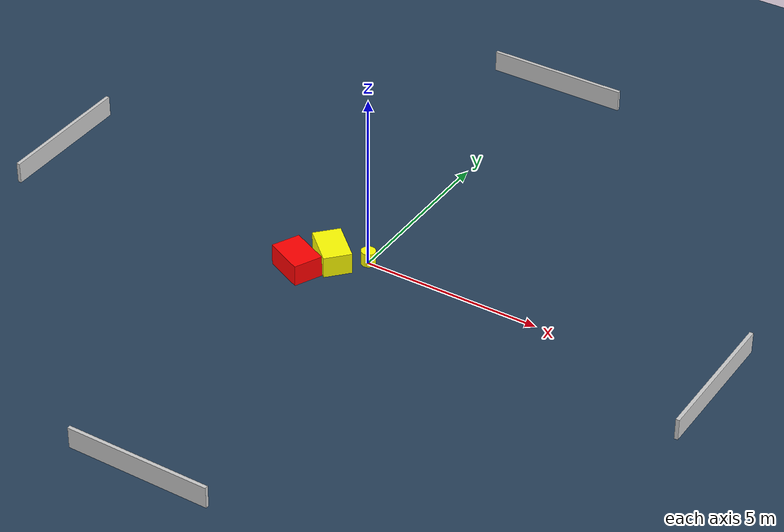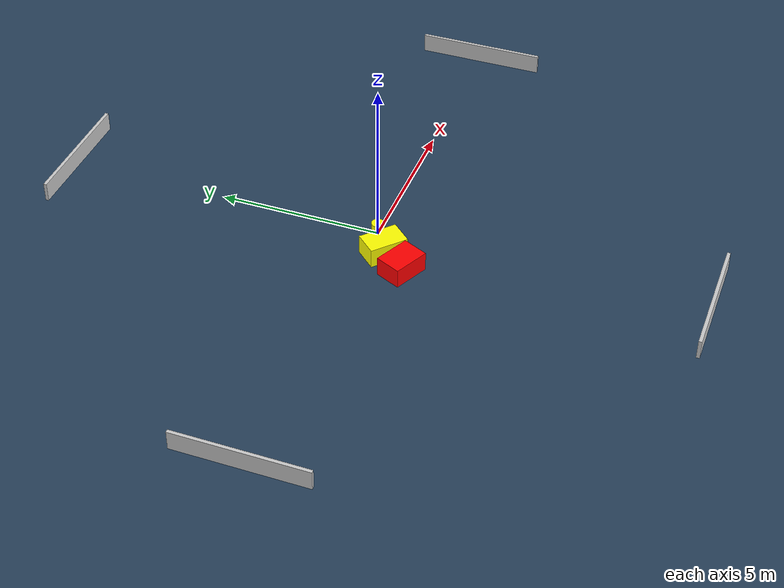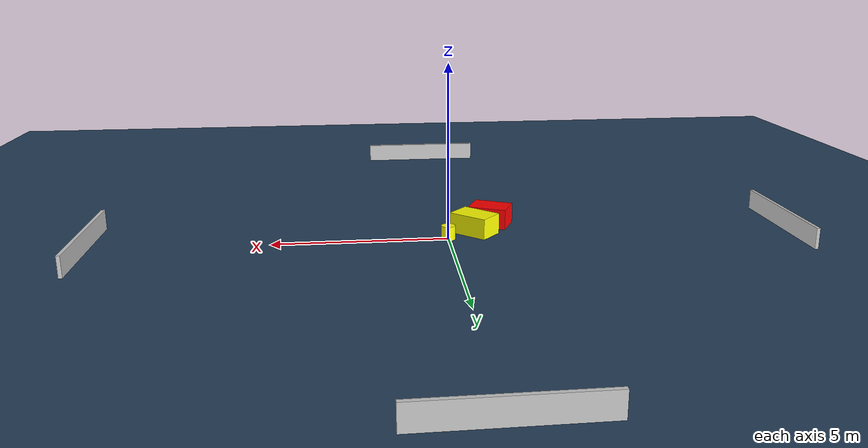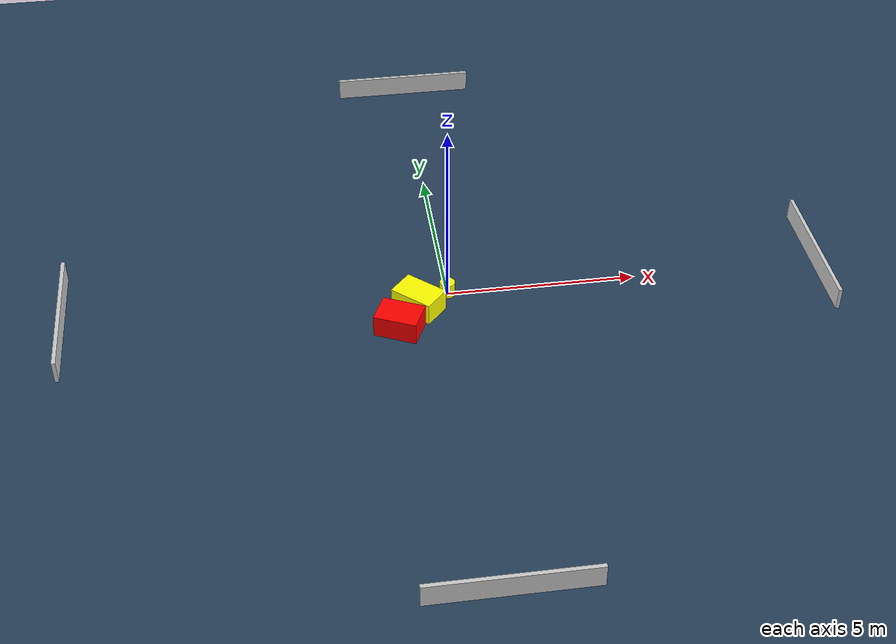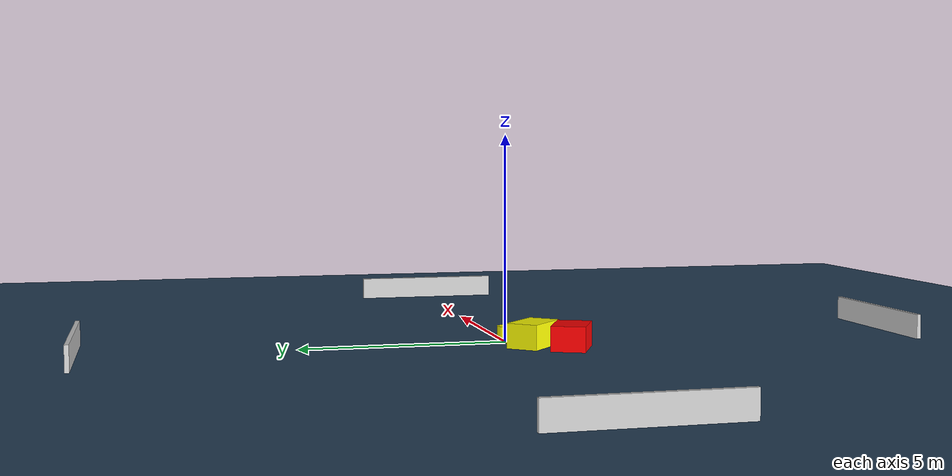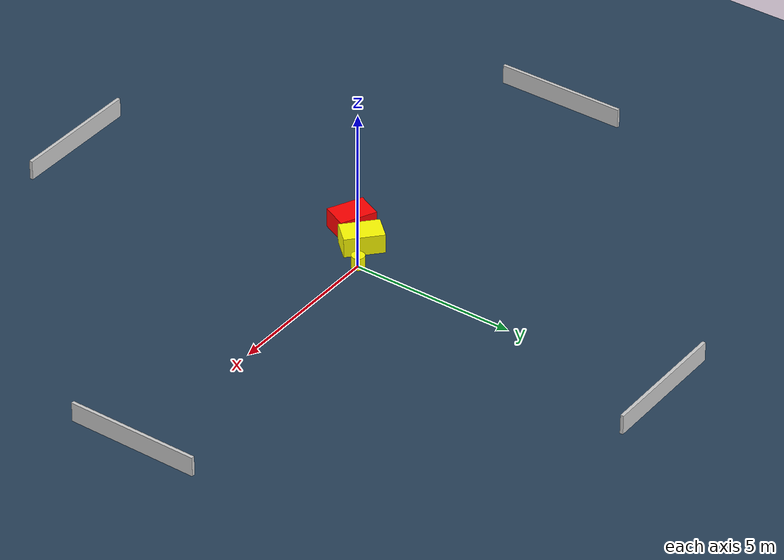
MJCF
<?xml version="1.0" ?>
<mujoco model="generated_environment">
  <option timestep="0.01" integrator="RK4" cone="elliptic"/>
  <default>
    <geom density="1"/>
  </default>
  <asset>
    <texture builtin="gradient" height="3072" name="skybox" rgb1="0.3 0.5 0.7" rgb2="0 0 0" type="skybox" width="512"/>
    <texture builtin="checker" height="300" name="groundplane" rgb1="0.2 0.3 0.4" rgb2="0.1 0.2 0.3" type="2d" width="300"/>
    <material name="groundplane" reflectance="0.2" texrepeat="5 5" texture="groundplane"/>
  </asset>
  <worldbody>
    <light dir="0 0 -1" directional="true" pos="0 0 1.5"/>
    <geom condim="3" friction="0.5 0.005 0.001" material="groundplane" name="floor" pos="0 0 0" size="0 0 0.05" type="plane"/>
    <body name="walls">
      <geom name="wall_1" condim="4" pos="-10.0 0.0 0.3" rgba="0.800000011920929 0.800000011920929 0.800000011920929 1.0" size="0.05 2.0 0.3" type="box"/>
      <geom name="wall_2" condim="4" pos="10.0 0.0 0.3" rgba="0.800000011920929 0.800000011920929 0.800000011920929 1.0" size="0.05 2.0 0.3" type="box"/>
      <geom name="wall_3" condim="4" pos="0.0 -10.0 0.3" rgba="0.800000011920929 0.800000011920929 0.800000011920929 1.0" size="2.0 0.05 0.3" type="box"/>
      <geom name="wall_4" condim="4" pos="0.0 10.0 0.3" rgba="0.800000011920929 0.800000011920929 0.800000011920929 1.0" size="2.0 0.05 0.3" type="box"/>
    </body>
    <body name="robot">
      <joint name="joint_x" type="slide" pos="0 0 0" axis="1 0 0"/>
      <joint name="joint_y" type="slide" pos="0 0 0" axis="0 1 0"/>
      <geom name="robot" type="cylinder" pos="0.0 0.0 0.2" size="0.2 0.2 0.0" mass="5.0" friction="1.0 0.005 0.0001" condim="4" rgba="1.0 1.0 0.0 1.0"/>
    </body>
    <body name="obstacle_1_movable">
      <geom name="obstacle_1_movable" condim="4" pos="-0.8194675120319133 -0.4675470018288838 0.3" euler="0 0 227.69329751504853" friction="0.0 0.005 0.001" rgba="1.0 1.0 0.0 1.0" size="0.3870031307375783 0.5960470268055778 0.3" type="box" mass="0.1"/>
      <joint type="free"/>
    </body>
    <body name="obstacle_2_static">
      <geom name="obstacle_2_static" condim="4" pos="-1.4051788672344772 -1.2390913673141877 0.3" euler="0 0 334.94919857212943" friction="0.0 0.005 0.001" rgba="1.0 0.0 0.0 1.0" size="0.57073709774606 0.40910274646149364 0.3" type="box"/>
    </body>
  </worldbody>
  <actuator>
    <motor name="actuator_x" joint="joint_x" gear="1" ctrlrange="-1 1"/>
    <motor name="actuator_y" joint="joint_y" gear="1" ctrlrange="-1 1"/>
  </actuator>
</mujoco>
